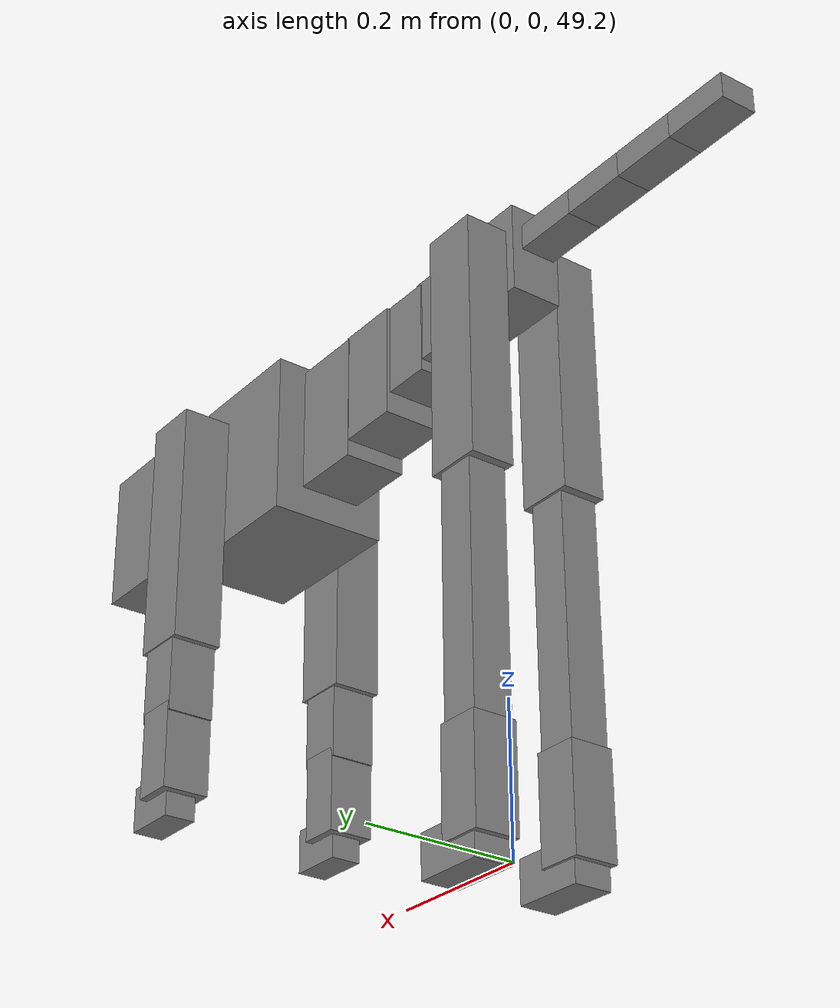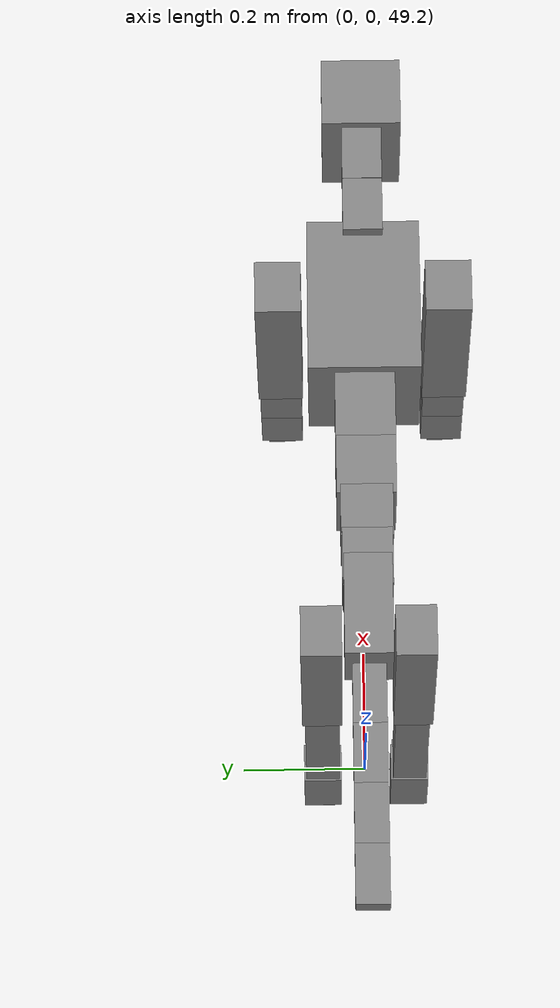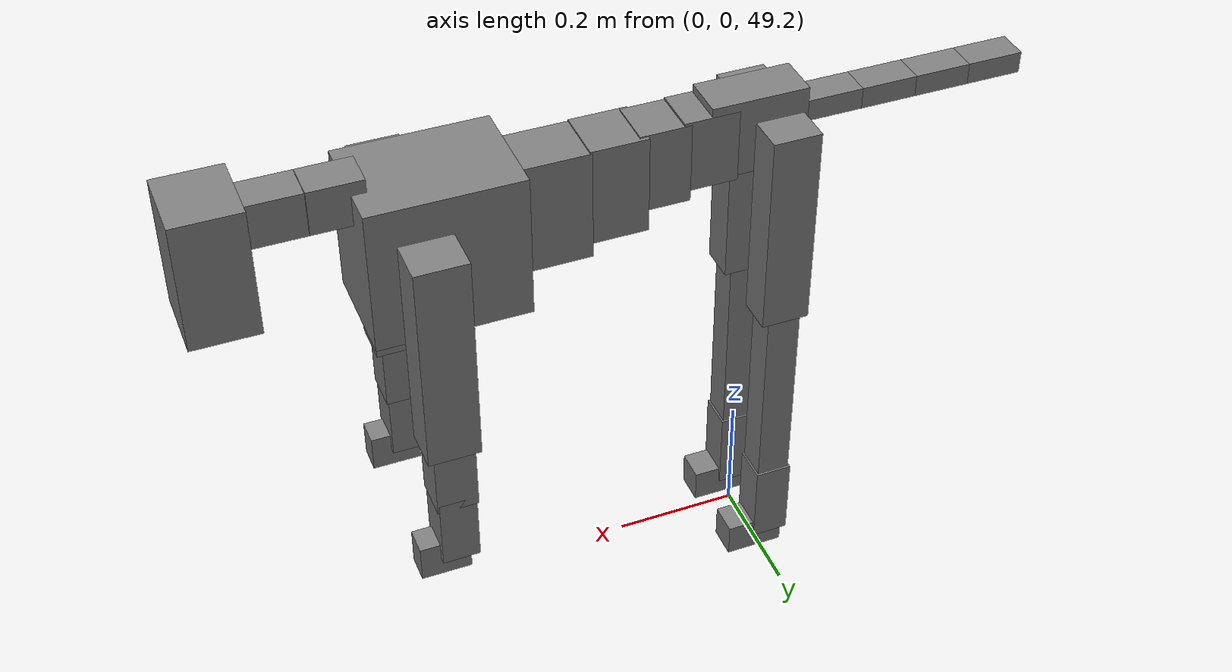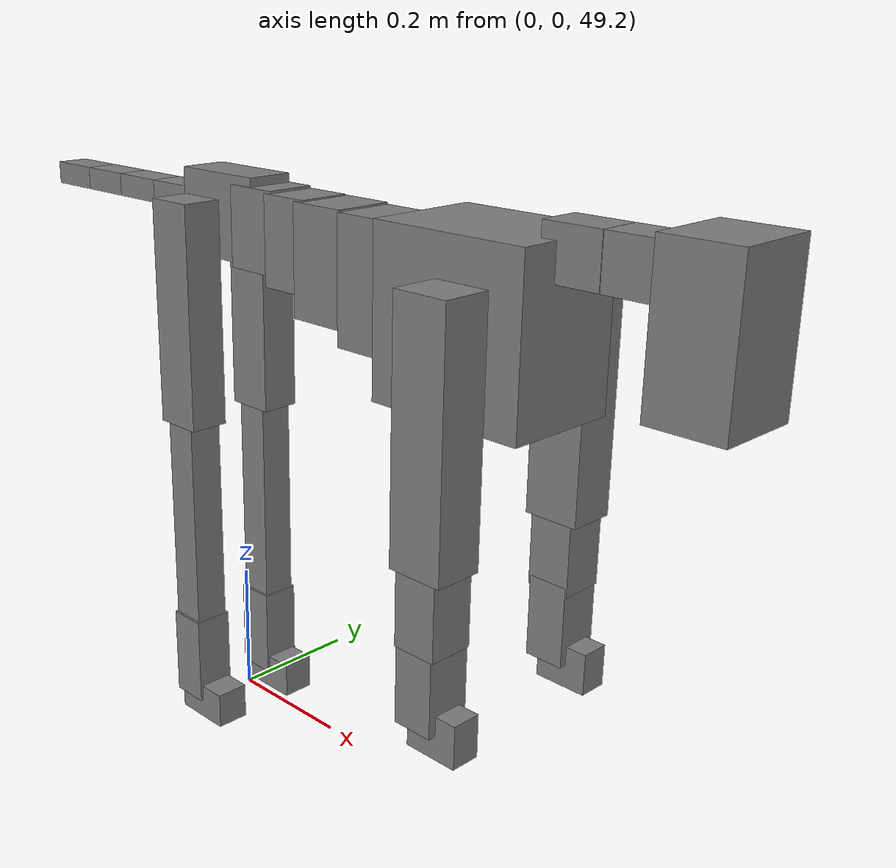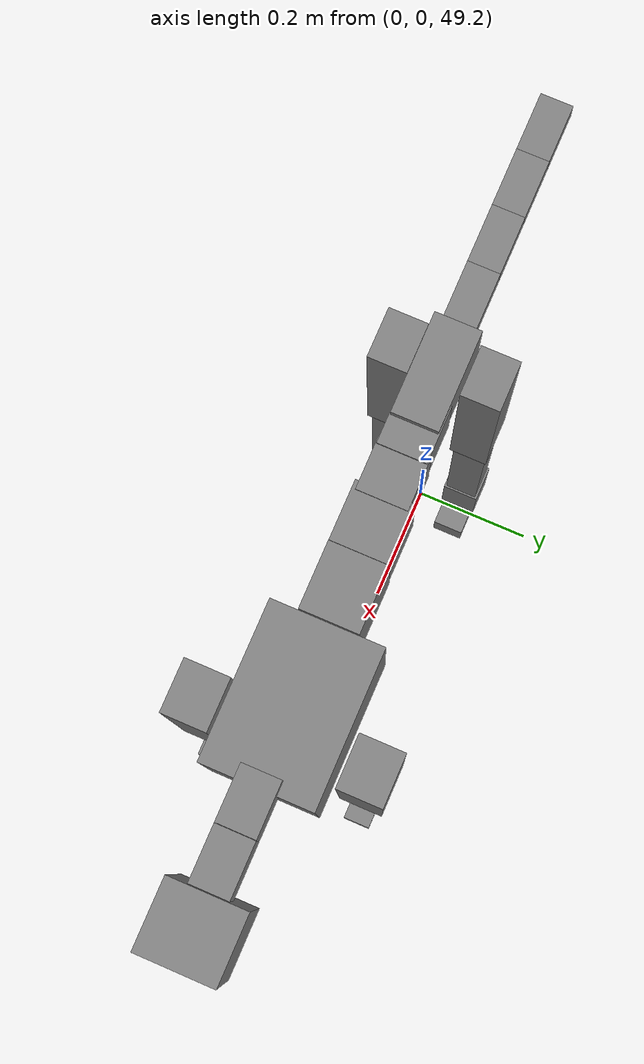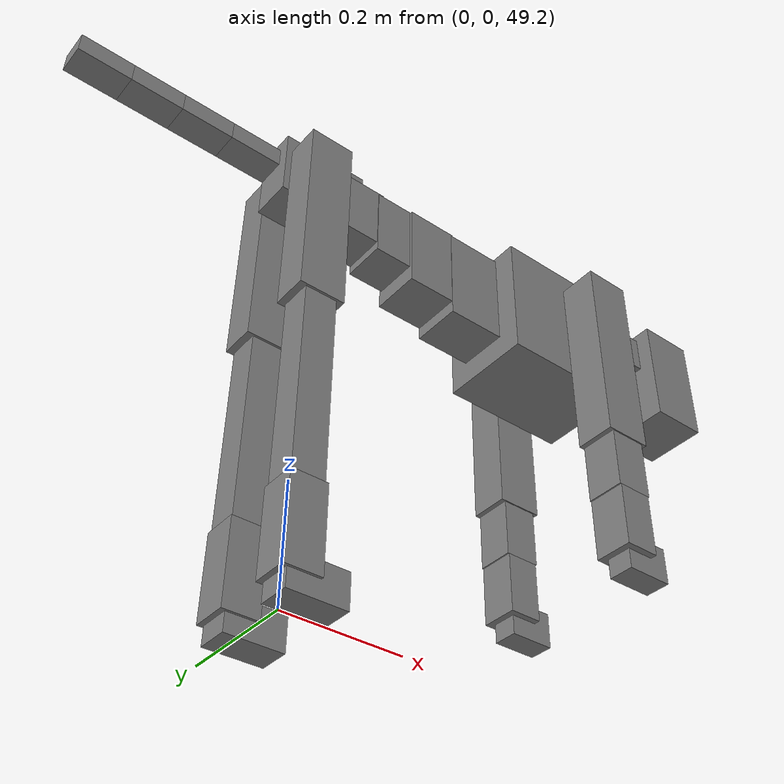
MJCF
<mujoco model="dog">

    <default>
        <joint armature="0.02" stiffness="1" damping="0.2" limited="true"/>
        <geom condim="3" friction="1 0.05 0.05" margin="0.01"/>
        <motor ctrllimited="true" ctrlrange="-1.0 1.0" forcelimited="true" gear="50"/>
    </default>

    <compiler inertiafromgeom="true" angle="radian"/>

    <option timestep="0.016" iterations="50" tolerance="1e-10" solver="Newton" jacobian="dense" cone="pyramidal"/>

    <size nconmax="20000" njmax="60000" nstack="5000000"/>
    <visual>
        <map force="0.1" zfar="30"/>
        <rgba haze="0.15 0.25 0.35 1"/>
        <quality shadowsize="2048"/>
        <global offwidth="800" offheight="800"/>
    </visual>

    <asset>
        <texture type="skybox" builtin="gradient" rgb1="0.3 0.5 0.7" rgb2="0 0 0" width="512" height="512"/>
        <texture name="texplane" type="2d" builtin="checker" rgb1=".2 .3 .4" rgb2=".1 0.15 0.2" width="512" height="512"
                 mark="cross" markrgb=".8 .8 .8"/>
        <texture name="texgeom" type="cube" builtin="flat" mark="cross" width="127" height="1278" rgb1="0.8 0.6 0.4"
                 rgb2="0.8 0.6 0.4" markrgb="1 1 1" random="0.01"/>

        <material name="matplane" reflectance="0.3" texture="texplane" texrepeat="1 1" texuniform="true"/>
        <material name="matgeom" texture="texgeom" texuniform="true" rgba="0.8 0.6 .4 1"/>
    </asset>

    <worldbody>
        <geom name="floor" pos="0 0 0" size="0 0 .25" type="plane" material="matplane" condim="3"/>

        <light directional="false" diffuse=".2 .2 .2" specular="0 0 0" pos="0 0 5" dir="0 0 -1" castshadow="false"/>
        <light mode="targetbodycom" target="torso" directional="false" diffuse=".8 .8 .8" specular="0.3 0.3 0.3"
               pos="0 0 4.0" dir="0 0 -1"/>

        <body name="root" pos="0 0 50">
            <freejoint name="root_1"/>
            <geom type="box" pos="0 0 -0.02" size="0.0774  0.0358  0.063" density="2030"/>

            <body name="spine1" pos="0.054 0 0">
                <joint name="spine1_y" axis="0 1 0" range="0 0.7" limited="true"/>
                <geom type="box" pos="0.02375 0 -0.03" size="0.04375  0.0375  0.05985" density="2030"/>

                <body name="spine2" pos="0.0612 0 0">
                    <joint name="spine2_y" axis="0 1 0" range="-0.15 0.15" limited="true"/>
                    <geom type="box" pos="0.03555  0  -0.04" size="0.04055  0.039  0.06615" density="2030"/>

                    <body name="spine3" pos="0.0730 0 0">
                        <joint name="spine3_y" axis="0 1 0" range="-0.15 0.15" limited="true"/>
                        <geom type="box" pos="0.03555  0  -0.057" size="0.04555  0.0445  0.081" density="2030"/>

                        <body name="spine4" pos="0.0780 0 0">
                            <joint name="spine4_y" axis="0 1 0" range="-0.15 0.15" limited="true"/>
                            <geom type="box" pos="0.05265  0  -0.07" size="0.05265  0.045  0.09135" density="2030"/>

                            <body name="torso" pos="0.1082 0 0">
                                <joint name="torso_y" axis="0 1 0" range="-0.15 0.15" limited="true"/>
                                <geom type="box" pos="0.11925  0  -0.085" size="0.11925  0.085  0.11745"
                                      density="2030"/>

                                <body name="neck1" pos="0.2160  0   0.0180">
                                    <joint name="neck1_y" axis="0 1 0" range="-1.2  -1" limited="true"/>
                                    <geom type="box" pos="0.0423  0  0" size="0.0423  0.03  0.036" density="2325"/>

                                    <body name="neck2" pos="0.0853  0  0">
                                        <joint name="neck2_y" axis="0 1 0" range="0.1  0" limited="true"/>
                                        <geom type="box" pos="0.0423  0  0" size="0.0423  0.03  0.036" density="2325"/>

                                        <body name="head" pos="0.0853  0  0">
                                            <joint name="head_y" axis="0 1 0" range="-0.3  -0.2" limited="true"/>
                                            <geom type="box" pos="0.0531  0  -0.055" size="0.0531  0.06  0.1044"
                                                  density="4030"/>

                                        </body>
                                    </body>
                                </body>

                                <body name="front_shoulder" pos="0.156  0   -0.0480">
                                    <joint name="front_shoulder_y" axis="0 1 0" range="-1 1.5" limited="true"/>
                                    <geom type="box" pos="0 0.13 -0.1485" size="0.0411  0.0351  0.1752" density="1158"/>
                                    <geom type="box" pos="0 -0.13 -0.1485" size="0.0411  0.0351  0.1752"
                                          density="1158"/>

                                    <body name="front_elbow" pos="0  0  -0.2971">
                                        <joint name="front_elbow_y" axis="0 1 0" range="-2 0" limited="true"/>
                                        <geom type="box" pos="0 0.13 -0.0651" size="0.0323  0.0330  0.0651"
                                              density="1081"/>
                                        <geom type="box" pos="0 -0.13 -0.0651" size="0.0323  0.0330  0.0651"
                                              density="1081"/>

                                        <body name="front_wrist" pos="0  0  -0.1302">
                                            <joint name="front_wrist_y" axis="0 1 0" range="-0.2 0" limited="true"/>
                                            <geom type="box" pos="0 0.13 -0.0469" size="0.0297  0.0330  0.0601"
                                                  density="1664"/>
                                            <geom type="box" pos="0 -0.13 -0.0469" size="0.0297  0.0330  0.0601"
                                                  density="1664"/>

                                            <body name="front_finger_end" pos="0  0  -0.0938">
                                                <joint name="front_finger_y" axis="0 1 0" range="-0.4 1"
                                                       limited="true"/>
                                                <geom type="box" pos="0.0218  0.13  -0.0157"
                                                      size="0.0400  0.0218  0.0307" density="1515"/>
                                                <geom type="box" pos="0.0218  -0.13  -0.0157"
                                                      size="0.0400  0.0218  0.0307" density="1515"/>

                                            </body>

                                        </body>
                                    </body>
                                </body>

                            </body>
                        </body>
                    </body>
                </body>
            </body>

            <body name="back_hip" pos="-0.03 0 -0.018">
                <joint name="back_hip_y" axis="0 1 0" range="-1.5 0.3" limited="true"/>
                <geom type="box" pos="0 0.07 -0.1475" size="0.0388  0.0304  0.1703" density="1154"/>
                <geom type="box" pos="0 -0.07 -0.1475" size="0.0388  0.0304  0.1703" density="1154"/>

                <body name="back_knee" pos="0  0  -0.2951">
                    <joint name="back_knee_y" axis="0 1 0" range="0 2.8" limited="true"/>
                    <geom type="box" pos="0 0.07 -0.1788" size="0.0270  0.0266  0.1944" density="1227"/>
                    <geom type="box" pos="0 -0.07 -0.1788" size="0.0270  0.0266  0.1944" density="1227"/>

                    <body name="back_ankle" pos="0  0  -0.3576">
                        <joint name="back_ankle_y" axis="0 1 0" range="-2.2 0" limited="true"/>
                        <geom type="box" pos="0 0.07 -0.0589" size="0.0300  0.0300  0.0701" density="1284"/>
                        <geom type="box" pos="0 -0.07 -0.0589" size="0.0300  0.0300  0.0701" density="1284"/>

                        <body name="back_toe_end" pos="0  0  -0.1178">
                            <joint name="back_toe_y" axis="0 1 0" range="-0.4 1" limited="true"/>
                            <geom type="box" pos="0.0259  0.07  -0.0130" size="0.0475  0.0259  0.0280" density="1515"/>
                            <geom type="box" pos="0.0259  -0.07  -0.0130" size="0.0475  0.0259  0.0280" density="1515"/>

                        </body>
                    </body>
                </body>
            </body>

            <body name="tail1" pos="-0.074 0 -0.006">
                <joint name="tail1_y" axis="0 1 0" range="-0.2 0.2" limited="true"/>
                <geom type="box" pos="-0.0536  0  0" size="0.045  0.025  0.0175" density="1587"/>

                <body name="tail2" pos="-0.09 0 0">
                    <joint name="tail2_y" axis="0 1 0" range="-0.2 0.2" limited="true"/>
                    <geom type="box" pos="-0.0536  0  0" size="0.045  0.025  0.0175" density="1587"/>

                    <body name="tail3" pos="-0.09 0 0">
                        <joint name="tail3_y" axis="0 1 0" range="-0.2 0.2" limited="true"/>
                        <geom type="box" pos="-0.0536  0  0" size="0.045  0.025  0.0175" density="1587"/>

                        <body name="tail4" pos="-0.09 0 0">
                            <joint name="tail4_y" axis="0 1 0" range="-0.2 0.2" limited="true"/>
                            <geom type="box" pos="-0.0536  0  0" size="0.045  0.025  0.0175" density="1587"/>

                        </body>
                    </body>
                </body>
            </body>
        </body>
    </worldbody>

    <actuator>
        <motor joint="spine1_y" forcerange="-150 150     "/>
        <motor joint="spine2_y" forcerange="-150 150     "/>
        <motor joint="spine3_y" forcerange="-150 150     "/>
        <motor joint="spine4_y" forcerange="-150 150     "/>
        <motor joint="torso_y" forcerange="-150 150     "/>
        <motor joint="neck1_y" forcerange="-100 100       "/>
        <motor joint="neck2_y" forcerange="-100 100       "/>
        <motor joint="head_y" forcerange="-150 150       "/>
        <motor joint="front_shoulder_y" forcerange="-150.84 183.21"/>
        <motor joint="front_elbow_y" forcerange="-177.62 162.67"/>
        <motor joint="front_wrist_y" forcerange="-132.86 130.84"/>
        <motor joint="front_finger_y" forcerange="-44.47 31.82"/>
        <motor joint="back_hip_y" forcerange="-308.49 296.89"/>
        <motor joint="back_knee_y" forcerange="-235.31 351.82"/>
        <motor joint="back_angle_y" forcerange="-233.51 146.01"/>
        <motor joint="back_toe_y" forcerange="-48.27 79.14"/>
        <motor joint="tail1_y" forcerange="-50 50     "/>
        <motor joint="tail2_y" forcerange="-50 50     "/>
        <motor joint="tail3_y" forcerange="-50 50     "/>
        <motor joint="tail4_y" forcerange="-50 50     "/>
    </actuator>
</mujoco>
